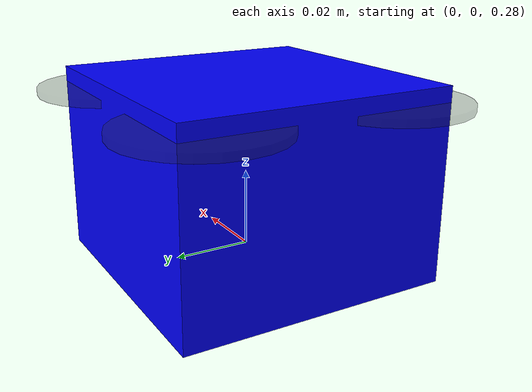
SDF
<?xml version="1.0" ?>
<sdf version="1.9">
  <model name="m5fly">
    <pose>0 0 0.3 0 0 0</pose>

    <link name="base_link">
      <inertial>
        <mass>0.035</mass>
        <inertia>
          <ixx>0.00003</ixx><ixy>0</ixy><ixz>0</ixz>
          <iyy>0.00003</iyy><iyz>0</iyz>
          <izz>0.00006</izz>
        </inertia>
      </inertial>

      <visual name="body_visual">
        <geometry>
          <box><size>0.07 0.07 0.05</size></box>
        </geometry>
        <!--
          Bug5 修正: OGRE2 レンダリング対応マテリアル
          emissive 0.0 0.0 0.5 で自発光 → 照明条件によらず常に安定した青
          ambient を高めに設定 → 影側でも青色を維持
        -->
        <material>
          <ambient>0.0 0.0 0.8 1</ambient>
          <diffuse>0.0 0.0 1.0 1</diffuse>
          <specular>0.0 0.0 0.1 1</specular>
          <emissive>0.0 0.0 0.5 1</emissive>
        </material>
      </visual>

      <collision name="collision">
        <geometry>
          <box><size>0.07 0.07 0.02</size></box>
        </geometry>
        <surface>
          <bounce>
            <restitution_coefficient>1.0</restitution_coefficient>
            <threshold>0</threshold>
          </bounce>
          <contact>
            <ode><max_vel>100</max_vel><min_depth>0.001</min_depth></ode>
          </contact>
        </surface>
      </collision>

      <collision name="top_guard_collision">
        <pose>0 0 0.035 0 0 0</pose>
        <geometry>
          <box><size>0.09 0.09 0.002</size></box>
        </geometry>
        <surface>
          <friction>
            <ode><mu>0.0</mu><mu2>0.0</mu2></ode>
          </friction>
          <bounce>
            <restitution_coefficient>0.9</restitution_coefficient>
            <threshold>0.01</threshold>
          </bounce>
          <contact>
            <ode><max_vel>100</max_vel><min_depth>0.001</min_depth></ode>
          </contact>
        </surface>
      </collision>
    </link>

    <link name="rotor_0">
      <pose>0.025 -0.025 0.02 0 0 0</pose>
      <inertial><mass>0.001</mass>
        <inertia><ixx>0.000001</ixx><iyy>0.000001</iyy><izz>0.000001</izz></inertia>
      </inertial>
      <visual name="rotor_0_visual">
        <geometry><cylinder><radius>0.02</radius><length>0.002</length></cylinder></geometry>
        <material><diffuse>0.2 0.2 0.2 0.3</diffuse></material>
      </visual>
      <collision name="rotor_0_collision">
        <geometry><cylinder><radius>0.02</radius><length>0.002</length></cylinder></geometry>
      </collision>
    </link>
    <joint name="rotor_0_joint" type="revolute">
      <parent>base_link</parent><child>rotor_0</child>
      <axis><xyz>0 0 1</xyz><limit><lower>-1e16</lower><upper>1e16</upper></limit></axis>
    </joint>

    <link name="rotor_1">
      <pose>-0.025 -0.025 0.02 0 0 0</pose>
      <inertial><mass>0.001</mass>
        <inertia><ixx>0.000001</ixx><iyy>0.000001</iyy><izz>0.000001</izz></inertia>
      </inertial>
      <visual name="rotor_1_visual">
        <geometry><cylinder><radius>0.02</radius><length>0.002</length></cylinder></geometry>
        <material><diffuse>0.2 0.2 0.2 0.3</diffuse></material>
      </visual>
      <collision name="rotor_1_collision">
        <geometry><cylinder><radius>0.02</radius><length>0.002</length></cylinder></geometry>
      </collision>
    </link>
    <joint name="rotor_1_joint" type="revolute">
      <parent>base_link</parent><child>rotor_1</child>
      <axis><xyz>0 0 1</xyz><limit><lower>-1e16</lower><upper>1e16</upper></limit></axis>
    </joint>

    <link name="rotor_2">
      <pose>0.025 0.025 0.02 0 0 0</pose>
      <inertial><mass>0.001</mass>
        <inertia><ixx>0.000001</ixx><iyy>0.000001</iyy><izz>0.000001</izz></inertia>
      </inertial>
      <visual name="rotor_2_visual">
        <geometry><cylinder><radius>0.02</radius><length>0.002</length></cylinder></geometry>
        <material><diffuse>0.2 0.2 0.2 0.3</diffuse></material>
      </visual>
      <collision name="rotor_2_collision">
        <geometry><cylinder><radius>0.02</radius><length>0.002</length></cylinder></geometry>
      </collision>
    </link>
    <joint name="rotor_2_joint" type="revolute">
      <parent>base_link</parent><child>rotor_2</child>
      <axis><xyz>0 0 1</xyz><limit><lower>-1e16</lower><upper>1e16</upper></limit></axis>
    </joint>

    <link name="rotor_3">
      <pose>-0.025 0.025 0.02 0 0 0</pose>
      <inertial><mass>0.001</mass>
        <inertia><ixx>0.000001</ixx><iyy>0.000001</iyy><izz>0.000001</izz></inertia>
      </inertial>
      <visual name="rotor_3_visual">
        <geometry><cylinder><radius>0.02</radius><length>0.002</length></cylinder></geometry>
        <material><diffuse>0.2 0.2 0.2 0.3</diffuse></material>
      </visual>
      <collision name="rotor_3_collision">
        <geometry><cylinder><radius>0.02</radius><length>0.002</length></cylinder></geometry>
      </collision>
    </link>
    <joint name="rotor_3_joint" type="revolute">
      <parent>base_link</parent><child>rotor_3</child>
      <axis><xyz>0 0 1</xyz><limit><lower>-1e16</lower><upper>1e16</upper></limit></axis>
    </joint>

    <plugin filename="ignition-gazebo-multicopter-control-system"
            name="ignition::gazebo::systems::MulticopterVelocityControl">
      <robotNamespace>m5fly</robotNamespace>
      <commandSubTopic>cmd_vel</commandSubTopic>
      <comLinkName>base_link</comLinkName>
      <!--
        修正: velocityGain 5.0 → 15.0
        旧 τ=2.0s → 上昇し続ける根本原因
        新 τ=0.067s (外側ループの約11倍速い) → カスケード安定
      -->
      <velocityGain>15.0 15.0 15.0</velocityGain>
      <attitudeGain>0.2 0.2 0.2</attitudeGain>
      <angularRateGain>0.05 0.05 0.05</angularRateGain>
      <maximumLinearAcceleration>20 20 20</maximumLinearAcceleration>
      <rotorConfiguration>
        <rotor>
          <jointName>rotor_0_joint</jointName>
          <forceConstant>4.0e-07</forceConstant><momentConstant>1e-7</momentConstant>
          <direction>-1</direction>
        </rotor>
        <rotor>
          <jointName>rotor_1_joint</jointName>
          <forceConstant>4.0e-07</forceConstant><momentConstant>1e-7</momentConstant>
          <direction>1</direction>
        </rotor>
        <rotor>
          <jointName>rotor_2_joint</jointName>
          <forceConstant>4.0e-07</forceConstant><momentConstant>1e-7</momentConstant>
          <direction>1</direction>
        </rotor>
        <rotor>
          <jointName>rotor_3_joint</jointName>
          <forceConstant>4.0e-07</forceConstant><momentConstant>1e-7</momentConstant>
          <direction>-1</direction>
        </rotor>
      </rotorConfiguration>
    </plugin>

    <plugin filename="ignition-gazebo-multicopter-motor-model-system"
            name="ignition::gazebo::systems::MulticopterMotorModel">
      <robotNamespace>m5fly</robotNamespace>
      <jointName>rotor_0_joint</jointName><linkName>rotor_0</linkName>
      <turningDirection>cw</turningDirection>
      <timeConstantUp>0.0125</timeConstantUp><timeConstantDown>0.025</timeConstantDown>
      <maxRotVelocity>800.0</maxRotVelocity>
      <motorConstant>4.0e-07</motorConstant><momentConstant>1e-7</momentConstant>
      <commandSubTopic>command/motor_speed</commandSubTopic>
      <motorNumber>0</motorNumber>
      <rotorDragCoefficient>8.06428e-05</rotorDragCoefficient>
      <rollingMomentCoefficient>1e-6</rollingMomentCoefficient>
      <motorSpeedPubTopic>motor_speed/0</motorSpeedPubTopic>
    </plugin>

    <plugin filename="ignition-gazebo-multicopter-motor-model-system"
            name="ignition::gazebo::systems::MulticopterMotorModel">
      <robotNamespace>m5fly</robotNamespace>
      <jointName>rotor_1_joint</jointName><linkName>rotor_1</linkName>
      <turningDirection>ccw</turningDirection>
      <timeConstantUp>0.0125</timeConstantUp><timeConstantDown>0.025</timeConstantDown>
      <maxRotVelocity>800.0</maxRotVelocity>
      <motorConstant>4.0e-07</motorConstant><momentConstant>1e-7</momentConstant>
      <commandSubTopic>command/motor_speed</commandSubTopic>
      <motorNumber>1</motorNumber>
      <rotorDragCoefficient>8.06428e-05</rotorDragCoefficient>
      <rollingMomentCoefficient>1e-6</rollingMomentCoefficient>
      <motorSpeedPubTopic>motor_speed/1</motorSpeedPubTopic>
    </plugin>

    <plugin filename="ignition-gazebo-multicopter-motor-model-system"
            name="ignition::gazebo::systems::MulticopterMotorModel">
      <robotNamespace>m5fly</robotNamespace>
      <jointName>rotor_2_joint</jointName><linkName>rotor_2</linkName>
      <turningDirection>ccw</turningDirection>
      <timeConstantUp>0.0125</timeConstantUp><timeConstantDown>0.025</timeConstantDown>
      <maxRotVelocity>800.0</maxRotVelocity>
      <motorConstant>4.0e-07</motorConstant><momentConstant>1e-7</momentConstant>
      <commandSubTopic>command/motor_speed</commandSubTopic>
      <motorNumber>2</motorNumber>
      <rotorDragCoefficient>8.06428e-05</rotorDragCoefficient>
      <rollingMomentCoefficient>1e-6</rollingMomentCoefficient>
      <motorSpeedPubTopic>motor_speed/2</motorSpeedPubTopic>
    </plugin>

    <plugin filename="ignition-gazebo-multicopter-motor-model-system"
            name="ignition::gazebo::systems::MulticopterMotorModel">
      <robotNamespace>m5fly</robotNamespace>
      <jointName>rotor_3_joint</jointName><linkName>rotor_3</linkName>
      <turningDirection>cw</turningDirection>
      <timeConstantUp>0.0125</timeConstantUp><timeConstantDown>0.025</timeConstantDown>
      <maxRotVelocity>800.0</maxRotVelocity>
      <motorConstant>4.0e-07</motorConstant><momentConstant>1e-7</momentConstant>
      <commandSubTopic>command/motor_speed</commandSubTopic>
      <motorNumber>3</motorNumber>
      <rotorDragCoefficient>8.06428e-05</rotorDragCoefficient>
      <rollingMomentCoefficient>1e-6</rollingMomentCoefficient>
      <motorSpeedPubTopic>motor_speed/3</motorSpeedPubTopic>
    </plugin>
  </model>
</sdf>
